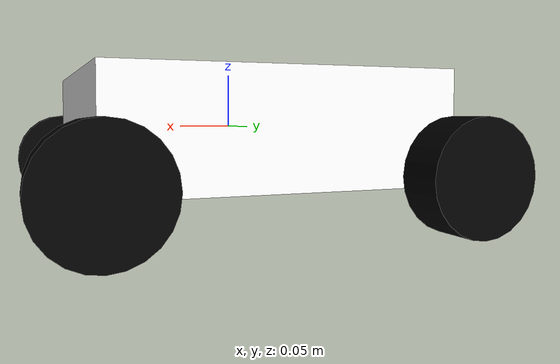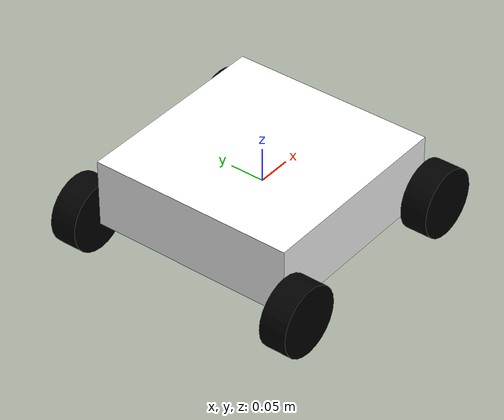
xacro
<?xml version="1.0"?>
<robot name="robotsim2" xmlns:xacro="http://www.ros.org/wiki/xacro">

    <xacro:property name="base_width" value="0.3"/>
    <xacro:property name="base_length" value="0.3"/>
    <xacro:property name="base_height" value="0.1"/>
    <xacro:property name="wheel_radius" value="0.05"/>
    <xacro:property name="wheel_width" value="0.04"/>

    <xacro:macro name="wheel" params="prefix x y">
        <link name="${prefix}_wheel">
            <visual>
                <geometry>
                    <cylinder radius="${wheel_radius}" length="${wheel_width}"/>
                </geometry>
                <material name="black">
                    <color rgba="0 0 0 1"/>
                </material>
            </visual>
            <collision>
                <geometry>
                    <cylinder radius="${wheel_radius}" length="${wheel_width}"/>
                </geometry>
            </collision>
            <inertial>
                <mass value="0.25"/>
                <inertia ixx="0.001" ixy="0" ixz="0" iyy="0.001" iyz="0" izz="0.001"/>
            </inertial>
        </link>

        <joint name="${prefix}_wheel_joint" type="continuous">
            <parent link="base_link"/>
            <child link="${prefix}_wheel"/>
            <origin xyz="${x} ${y} -0.04" rpy="${pi/2} 0 0"/>
            <axis xyz="0 0 1"/>
        </joint>

        <transmission name="${prefix}_wheel_trans">
            <type>transmission_interface/SimpleTransmission</type>
            <joint name="${prefix}_wheel_joint">
                <hardwareInterface>hardware_interface/VelocityJointInterface</hardwareInterface>
            </joint>
            <actuator name="${prefix}_wheel_motor">
                <mechanicalReduction>1</mechanicalReduction>
            </actuator>
        </transmission>
    </xacro:macro>

    <link name="base_link">
        <visual>
            <geometry>
                <box size="${base_length} ${base_width} ${base_height}"/>
            </geometry>
            <material name="white">
                <color rgba="1 1 1 1"/>
            </material>
        </visual>
        <collision>
            <geometry>
                <box size="${base_length} ${base_width} ${base_height}"/>
            </geometry>
        </collision>
        <inertial>
            <mass value="4"/>
            <inertia ixx="0.1" ixy="0.0" ixz="0.0" iyy="0.1" iyz="0.0" izz="0.1"/>
        </inertial>
    </link>

    <xacro:wheel prefix="front_right" x="${base_length/2}" y="${-base_width/2 - wheel_width/2}"/>
    <xacro:wheel prefix="front_left" x="${base_length/2}" y="${base_width/2 + wheel_width/2}"/>
    <xacro:wheel prefix="rear_right" x="${-base_length/2}" y="${-base_width/2 - wheel_width/2}"/>
    <xacro:wheel prefix="rear_left" x="${-base_length/2}" y="${base_width/2 + wheel_width/2}"/>

</robot>
